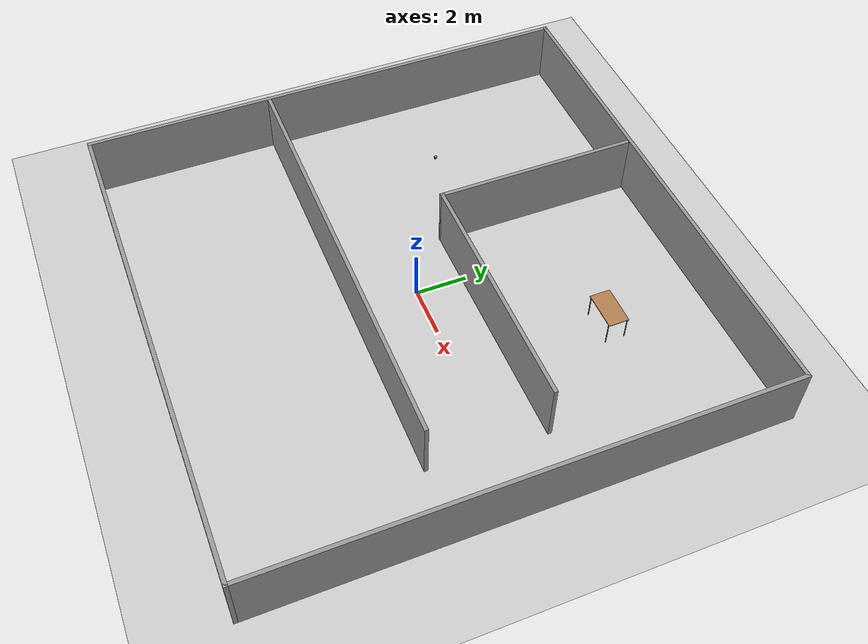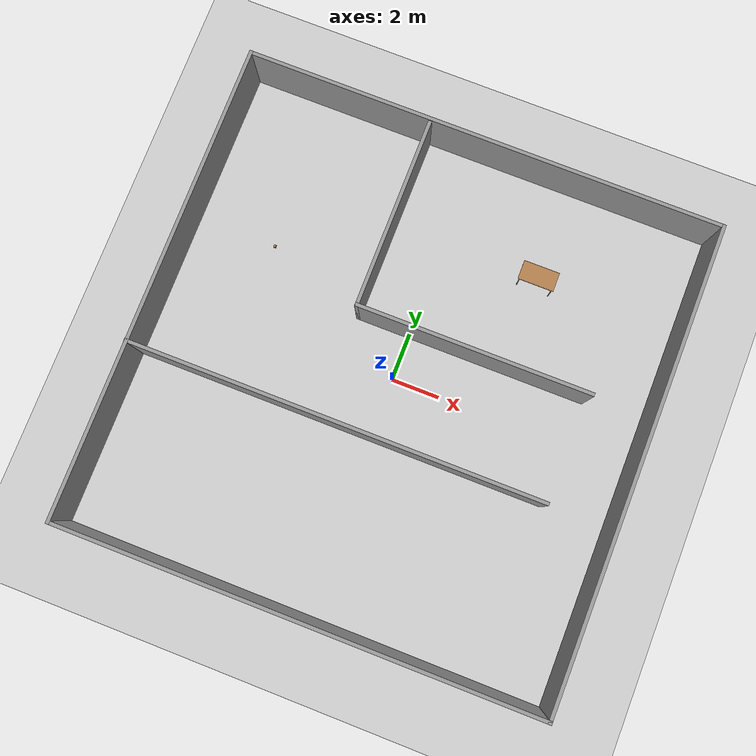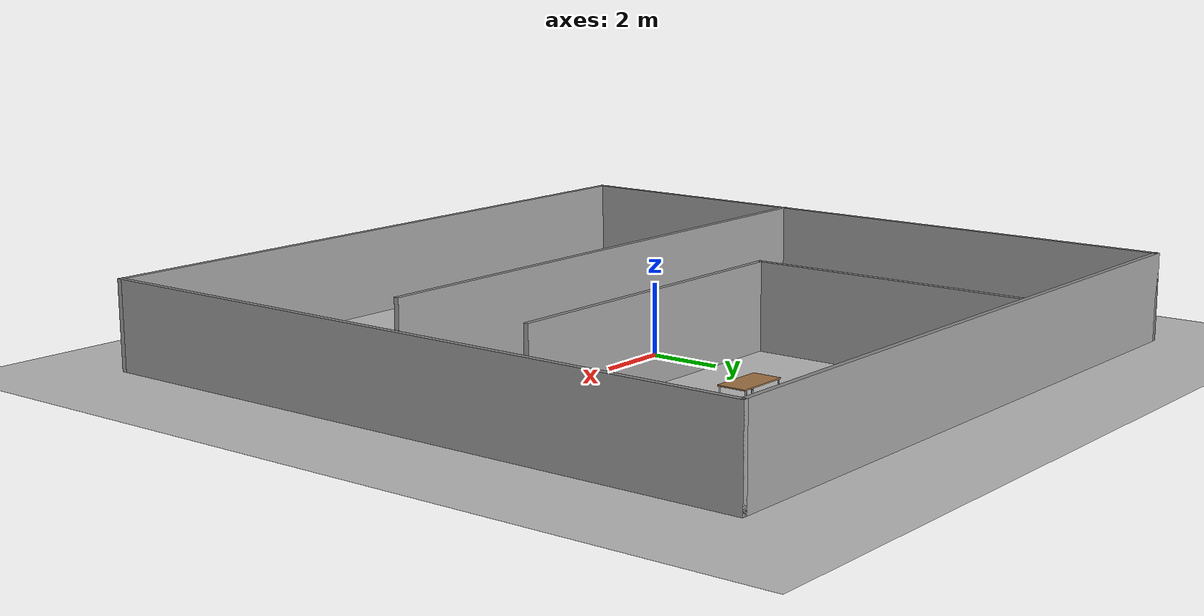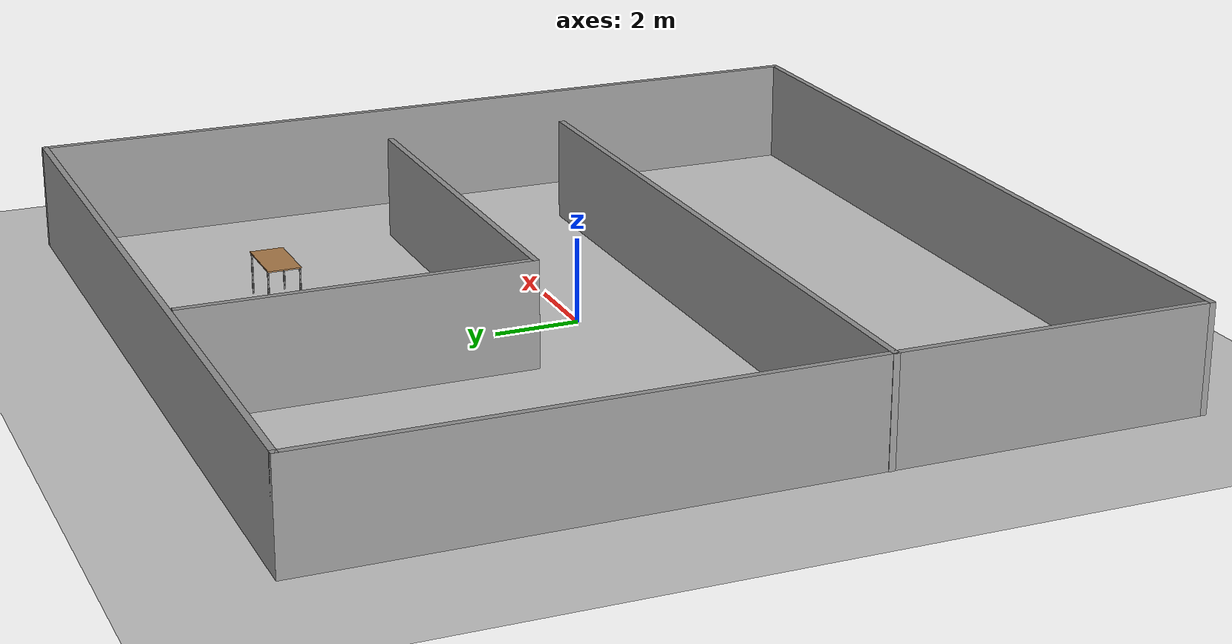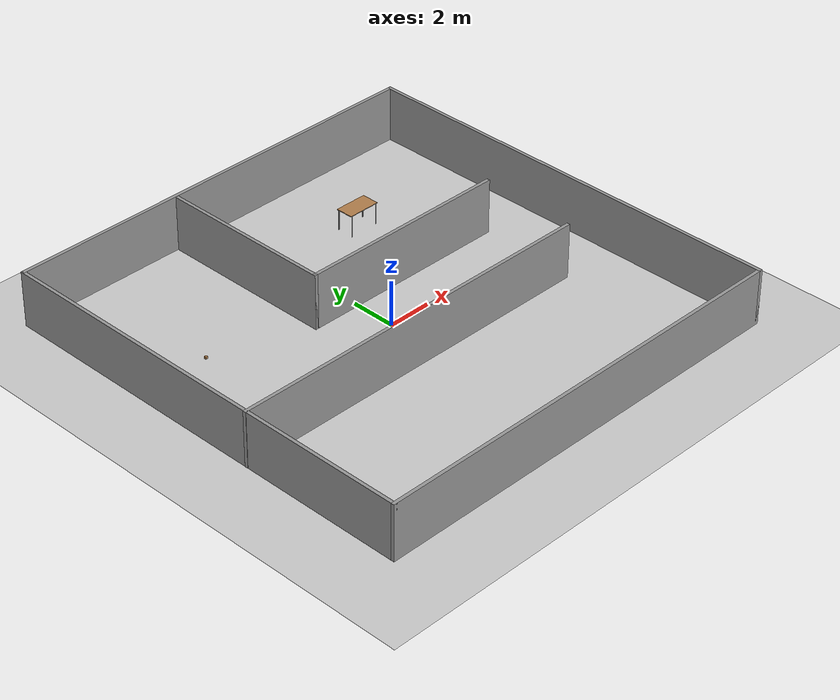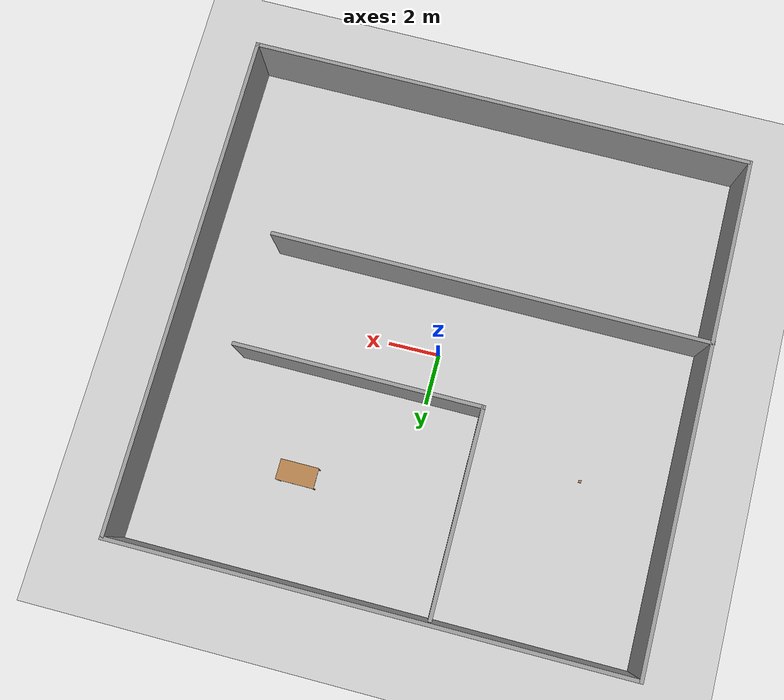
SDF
<sdf version="1.7">
 <world name="default">
  <light name="sun" type="directional">
   <pose>0 0 10 0 -0 0</pose>
   <diffuse>0.8 0.8 0.8 1</diffuse>
   <specular>0.2 0.2 0.2 1</specular>
   <attenuation>
    <range>1000</range>
    <constant>0.9</constant>
    <linear>0.01</linear>
    <quadratic>0.001</quadratic>
   </attenuation>
   <direction>-0.5 0.1 -0.9</direction>
   <spot><inner_angle>0</inner_angle><outer_angle>0</outer_angle><falloff>0</falloff></spot>
  </light>
  <model name="ground_plane">
   <static>1</static>
   <link name="link">
    <collision name="collision">
     <geometry><plane><normal>0 0 1</normal><size>100 100</size></plane></geometry>
     <surface><friction><ode><mu>100</mu><mu2>50</mu2></ode></friction></surface>
    </collision>
    <visual name="visual">
     <cast_shadows>0</cast_shadows>
     <geometry><plane><normal>0 0 1</normal><size>100 100</size></plane></geometry>
     <material>
      <script><uri>file://media/materials/scripts/gazebo.material</uri><name>Gazebo/Grey</name></script>
     </material>
    </visual>
   </link>
  </model>
  <gravity>0 0 -9.8</gravity>
  <magnetic_field>6e-06 2.3e-05 -4.2e-05</magnetic_field>
  <atmosphere type="adiabatic"/>
  <physics type="ode">
   <max_step_size>0.001</max_step_size>
   <real_time_factor>1</real_time_factor>
   <real_time_update_rate>1000</real_time_update_rate>
  </physics>
  <scene><ambient>0.4 0.4 0.4 1</ambient><background>0.7 0.7 0.7 1</background><shadows>1</shadows></scene>
  <audio><device>default</device></audio>
  <spherical_coordinates>
   <surface_model>EARTH_WGS84</surface_model>
   <latitude_deg>0</latitude_deg>
   <longitude_deg>0</longitude_deg>
   <elevation>0</elevation>
   <heading_deg>0</heading_deg>
  </spherical_coordinates>
  <model name="room">
   <pose>0.023217 0.008299 0 0 -0 0</pose>
   <link name="Wall_0">
    <collision name="Wall_0_Collision">
     <geometry><box><size>20 0.15 2.5</size></box></geometry>
     <pose>0 0 1.25 0 -0 0</pose>
    </collision>
    <visual name="Wall_0_Visual">
     <pose>0 0 1.25 0 -0 0</pose>
     <geometry><box><size>20 0.15 2.5</size></box></geometry>
     <material>
      <script><uri>file://media/materials/scripts/gazebo.material</uri><name>Gazebo/Grey</name></script>
      <ambient>1 1 1 1</ambient>
     </material>
     <meta><layer>0</layer></meta>
    </visual>
    <pose>0.007359 -9.925 0 0 -0 0</pose>
   </link>
   <link name="Wall_11">
    <collision name="Wall_11_Collision">
     <geometry><box><size>9.75 0.15 2.5</size></box></geometry>
     <pose>0 0 1.25 0 -0 0</pose>
    </collision>
    <visual name="Wall_11_Visual">
     <pose>0 0 1.25 0 -0 0</pose>
     <geometry><box><size>9.75 0.15 2.5</size></box></geometry>
     <material>
      <script><uri>file://media/materials/scripts/gazebo.material</uri><name>Gazebo/Grey</name></script>
      <ambient>1 1 1 1</ambient>
     </material>
     <meta><layer>0</layer></meta>
    </visual>
    <pose>2.57264 1.90063 0 0 -0 0</pose>
   </link>
   <link name="Wall_2">
    <collision name="Wall_2_Collision">
     <geometry><box><size>20 0.15 2.5</size></box></geometry>
     <pose>0 0 1.25 0 -0 0</pose>
    </collision>
    <visual name="Wall_2_Visual">
     <pose>0 0 1.25 0 -0 0</pose>
     <geometry><box><size>20 0.15 2.5</size></box></geometry>
     <material>
      <script><uri>file://media/materials/scripts/gazebo.material</uri><name>Gazebo/Grey</name></script>
      <ambient>1 1 1 1</ambient>
     </material>
     <meta><layer>0</layer></meta>
    </visual>
    <pose>-9.91764 0 0 0 -0 1.5708</pose>
   </link>
   <link name="Wall_3">
    <collision name="Wall_3_Collision">
     <geometry><box><size>20 0.15 2.5</size></box></geometry>
     <pose>0 0 1.25 0 -0 0</pose>
    </collision>
    <visual name="Wall_3_Visual">
     <pose>0 0 1.25 0 -0 0</pose>
     <geometry><box><size>20 0.15 2.5</size></box></geometry>
     <material>
      <script><uri>file://media/materials/scripts/gazebo.material</uri><name>Gazebo/Grey</name></script>
      <ambient>1 1 1 1</ambient>
     </material>
     <meta><layer>0</layer></meta>
    </visual>
    <pose>0.007359 9.925 0 0 -0 0</pose>
   </link>
   <link name="Wall_4">
    <collision name="Wall_4_Collision">
     <geometry><box><size>20 0.15 2.5</size></box></geometry>
     <pose>0 0 1.25 0 -0 0</pose>
    </collision>
    <visual name="Wall_4_Visual">
     <pose>0 0 1.25 0 -0 0</pose>
     <geometry><box><size>20 0.15 2.5</size></box></geometry>
     <material>
      <script><uri>file://media/materials/scripts/gazebo.material</uri><name>Gazebo/Grey</name></script>
      <ambient>1 1 1 1</ambient>
     </material>
     <meta><layer>0</layer></meta>
    </visual>
    <pose>9.93236 0 0 0 -0 -1.5708</pose>
   </link>
   <link name="Wall_6">
    <collision name="Wall_6_Collision">
     <geometry><box><size>17.25 0.15 2.5</size></box></geometry>
     <pose>0 0 1.25 0 -0 0</pose>
    </collision>
    <visual name="Wall_6_Visual">
     <pose>0 0 1.25 0 -0 0</pose>
     <geometry><box><size>17.25 0.15 2.5</size></box></geometry>
     <material>
      <script><uri>file://media/materials/scripts/gazebo.material</uri><name>Gazebo/Grey</name></script>
      <ambient>1 1 1 1</ambient>
     </material>
     <meta><layer>0</layer></meta>
    </visual>
    <pose>-1.38236 -2.57737 0 0 -0 0</pose>
   </link>
   <link name="Wall_8">
    <collision name="Wall_8_Collision">
     <geometry><box><size>8 0.15 2.5</size></box></geometry>
     <pose>0 0 1.25 0 -0 0</pose>
    </collision>
    <visual name="Wall_8_Visual">
     <pose>0 0 1.25 0 -0 0</pose>
     <geometry><box><size>8 0.15 2.5</size></box></geometry>
     <material>
      <script><uri>file://media/materials/scripts/gazebo.material</uri><name>Gazebo/Grey</name></script>
      <ambient>1 1 1 1</ambient>
     </material>
     <meta><layer>0</layer></meta>
    </visual>
    <pose>-2.22736 5.82563 0 0 -0 -1.5708</pose>
   </link>
   <static>1</static>
  </model>
  <model name="table">
   <static>1</static>
   <link name="link">
    <collision name="surface">
     <pose>0 0 1 0 -0 0</pose>
     <geometry><box><size>1.5 0.8 0.03</size></box></geometry>
     <surface><friction><ode><mu>0.6</mu><mu2>0.6</mu2></ode></friction></surface>
    </collision>
    <visual name="visual1">
     <pose>0 0 1 0 -0 0</pose>
     <geometry><box><size>1.5 0.8 0.03</size></box></geometry>
     <material>
      <script><uri>file://media/materials/scripts/gazebo.material</uri><name>Gazebo/Wood</name></script>
     </material>
    </visual>
    <collision name="front_left_leg">
     <pose>0.68 0.38 0.5 0 -0 0</pose>
     <geometry><cylinder><radius>0.02</radius><length>1</length></cylinder></geometry>
    </collision>
    <visual name="front_left_leg">
     <pose>0.68 0.38 0.5 0 -0 0</pose>
     <geometry><cylinder><radius>0.02</radius><length>1</length></cylinder></geometry>
     <material>
      <script><uri>file://media/materials/scripts/gazebo.material</uri><name>Gazebo/Grey</name></script>
     </material>
    </visual>
    <collision name="front_right_leg">
     <pose>0.68 -0.38 0.5 0 -0 0</pose>
     <geometry><cylinder><radius>0.02</radius><length>1</length></cylinder></geometry>
    </collision>
    <visual name="front_right_leg">
     <pose>0.68 -0.38 0.5 0 -0 0</pose>
     <geometry><cylinder><radius>0.02</radius><length>1</length></cylinder></geometry>
     <material>
      <script><uri>file://media/materials/scripts/gazebo.material</uri><name>Gazebo/Grey</name></script>
     </material>
    </visual>
    <collision name="back_right_leg">
     <pose>-0.68 -0.38 0.5 0 -0 0</pose>
     <geometry><cylinder><radius>0.02</radius><length>1</length></cylinder></geometry>
    </collision>
    <visual name="back_right_leg">
     <pose>-0.68 -0.38 0.5 0 -0 0</pose>
     <geometry><cylinder><radius>0.02</radius><length>1</length></cylinder></geometry>
     <material>
      <script><uri>file://media/materials/scripts/gazebo.material</uri><name>Gazebo/Grey</name></script>
     </material>
    </visual>
    <collision name="back_left_leg">
     <pose>-0.68 0.38 0.5 0 -0 0</pose>
     <geometry><cylinder><radius>0.02</radius><length>1</length></cylinder></geometry>
    </collision>
    <visual name="back_left_leg">
     <pose>-0.68 0.38 0.5 0 -0 0</pose>
     <geometry><cylinder><radius>0.02</radius><length>1</length></cylinder></geometry>
     <material>
      <script><uri>file://media/materials/scripts/gazebo.material</uri><name>Gazebo/Grey</name></script>
     </material>
    </visual>
   </link>
   <pose>3.99895 5.91249 0 0 -0 0</pose>
  </model>
  <model name="wood_cube_10cm">
   <link name="link">
    <pose>0 0 0.05 0 -0 0</pose>
    <inertial>
     <mass>0.5167</mass>
     <inertia>
      <ixx>0.000861167</ixx>
      <ixy>0</ixy>
      <ixz>0</ixz>
      <iyy>0.000861167</iyy>
      <iyz>0</iyz>
      <izz>0.000861167</izz>
     </inertia>
    </inertial>
    <collision name="collision">
     <geometry><box><size>0.1 0.1 0.1</size></box></geometry>
     <surface>
      <contact>
       <poissons_ratio>0.347</poissons_ratio>
       <elastic_modulus>8.8e+09</elastic_modulus>
       <ode><kp>100000</kp><kd>100</kd><max_vel>100</max_vel><min_depth>0.001</min_depth></ode>
      </contact>
      <friction>
       <torsional>
        <coefficient>1</coefficient>
        <use_patch_radius>0</use_patch_radius>
        <surface_radius>0.01</surface_radius>
       </torsional>
      </friction>
     </surface>
    </collision>
    <visual name="visual">
     <geometry><box><size>0.1 0.1 0.1</size></box></geometry>
     <material>
      <script><uri>file://media/materials/scripts/gazebo.material</uri><name>Gazebo/Wood</name></script>
     </material>
    </visual>
   </link>
   <pose>-6.527 3.43624 -0.001013 0 -0 0</pose>
  </model>
 </world>
</sdf>
